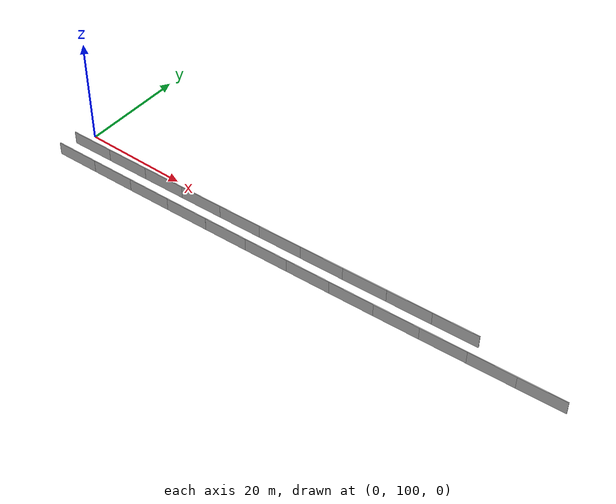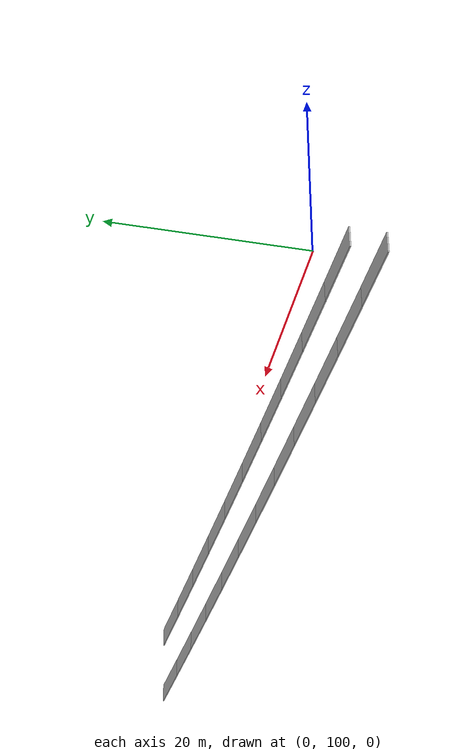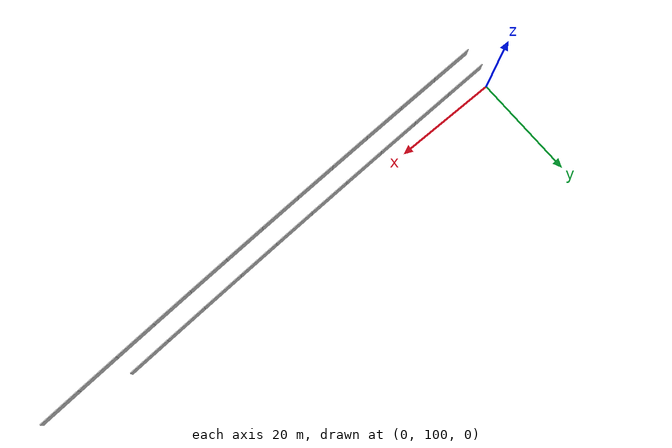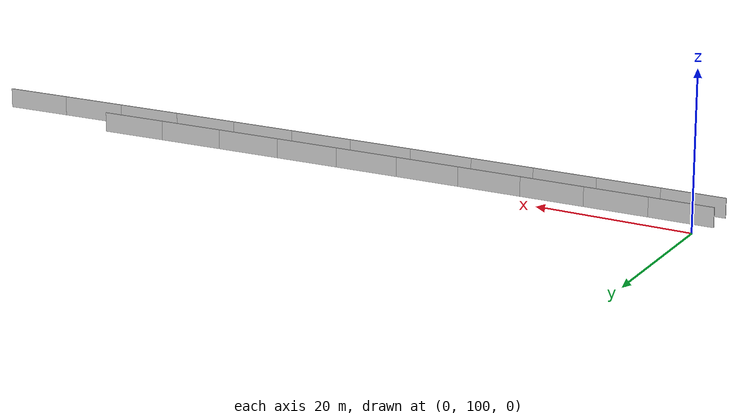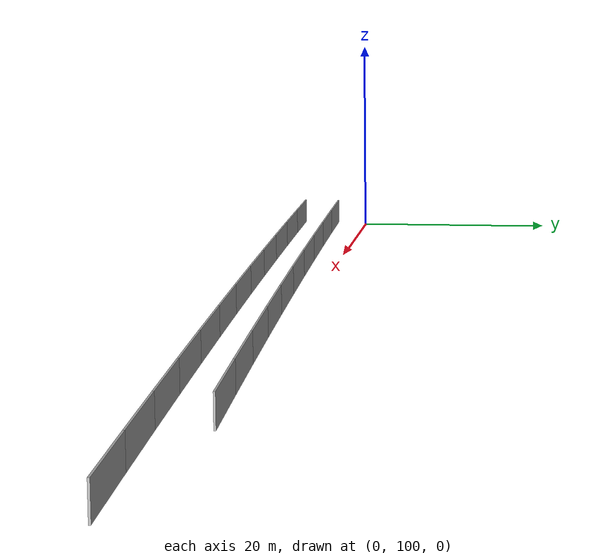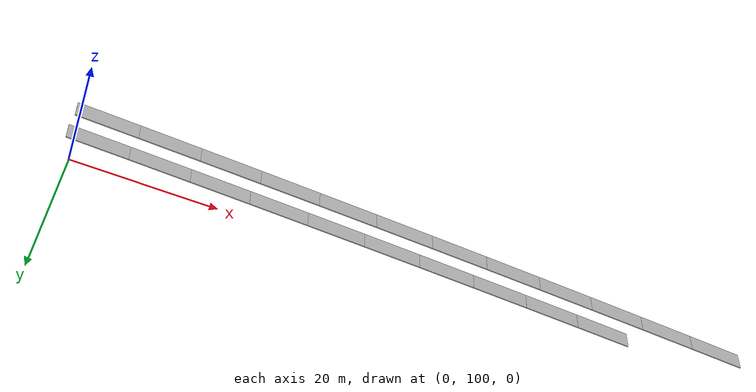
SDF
<?xml version="1.0" ?>
<sdf version="1.6">
  <model name="sps_2300">
    <pose frame="">0 0 0 0 -0 0</pose>
    <static>1</static>
    <self_collide>0</self_collide>
    <allow_auto_disable>0</allow_auto_disable>
    <link name="Wall8978">
      <kinematic>0</kinematic>
      <gravity>1</gravity>
      <self_collide>0</self_collide>
      <collision name="collision">
        <geometry>
          <box>
            <size>8.25191 0.15 2.5</size>
          </box>
        </geometry>
        <pose frame="">0 0 0 0 -0 0</pose>
      </collision>
      <visual name="visual">
        <geometry>
          <box>
            <size>8.25191 0.15 2.5</size>
          </box>
        </geometry>
        <pose frame="">0 0 0 0 -0 0</pose>
        <cast_shadows>1</cast_shadows>
        <transparency>0.0</transparency>
      </visual>
      <pose frame="">2.73046 96.8373 1.25 0 -0 0.0272964</pose>
    </link>
    <link name="Wall8979">
      <kinematic>0</kinematic>
      <gravity>1</gravity>
      <self_collide>0</self_collide>
      <collision name="collision">
        <geometry>
          <box>
            <size>8.2518 0.15 2.5</size>
          </box>
        </geometry>
        <pose frame="">0 0 0 0 -0 0</pose>
      </collision>
      <visual name="visual">
        <geometry>
          <box>
            <size>8.2518 0.15 2.5</size>
          </box>
        </geometry>
        <pose frame="">0 0 0 0 -0 0</pose>
        <cast_shadows>1</cast_shadows>
        <transparency>0.0</transparency>
      </visual>
      <pose frame="">10.979 97.0723 1.25 0 -0 0.0296721</pose>
    </link>
    <link name="Wall8980">
      <kinematic>0</kinematic>
      <gravity>1</gravity>
      <self_collide>0</self_collide>
      <collision name="collision">
        <geometry>
          <box>
            <size>8.25185 0.15 2.5</size>
          </box>
        </geometry>
        <pose frame="">0 0 0 0 -0 0</pose>
      </collision>
      <visual name="visual">
        <geometry>
          <box>
            <size>8.25185 0.15 2.5</size>
          </box>
        </geometry>
        <pose frame="">0 0 0 0 -0 0</pose>
        <cast_shadows>1</cast_shadows>
        <transparency>0.0</transparency>
      </visual>
      <pose frame="">19.2269 97.3268 1.25 0 -0 0.0320177</pose>
    </link>
    <link name="Wall8981">
      <kinematic>0</kinematic>
      <gravity>1</gravity>
      <self_collide>0</self_collide>
      <collision name="collision">
        <geometry>
          <box>
            <size>8.25189 0.15 2.5</size>
          </box>
        </geometry>
        <pose frame="">0 0 0 0 -0 0</pose>
      </collision>
      <visual name="visual">
        <geometry>
          <box>
            <size>8.25189 0.15 2.5</size>
          </box>
        </geometry>
        <pose frame="">0 0 0 0 -0 0</pose>
        <cast_shadows>1</cast_shadows>
        <transparency>0.0</transparency>
      </visual>
      <pose frame="">27.4742 97.6007 1.25 0 -0 0.0343784</pose>
    </link>
    <link name="Wall8982">
      <kinematic>0</kinematic>
      <gravity>1</gravity>
      <self_collide>0</self_collide>
      <collision name="collision">
        <geometry>
          <box>
            <size>8.25154 0.15 2.5</size>
          </box>
        </geometry>
        <pose frame="">0 0 0 0 -0 0</pose>
      </collision>
      <visual name="visual">
        <geometry>
          <box>
            <size>8.25154 0.15 2.5</size>
          </box>
        </geometry>
        <pose frame="">0 0 0 0 -0 0</pose>
        <cast_shadows>1</cast_shadows>
        <transparency>0.0</transparency>
      </visual>
      <pose frame="">35.7207 97.8941 1.25 0 -0 0.0367483</pose>
    </link>
    <link name="Wall8983">
      <kinematic>0</kinematic>
      <gravity>1</gravity>
      <self_collide>0</self_collide>
      <collision name="collision">
        <geometry>
          <box>
            <size>8.25191 0.15 2.5</size>
          </box>
        </geometry>
        <pose frame="">0 0 0 0 -0 0</pose>
      </collision>
      <visual name="visual">
        <geometry>
          <box>
            <size>8.25191 0.15 2.5</size>
          </box>
        </geometry>
        <pose frame="">0 0 0 0 -0 0</pose>
        <cast_shadows>1</cast_shadows>
        <transparency>0.0</transparency>
      </visual>
      <pose frame="">43.9665 98.207 1.25 0 -0 0.0391078</pose>
    </link>
    <link name="Wall8984">
      <kinematic>0</kinematic>
      <gravity>1</gravity>
      <self_collide>0</self_collide>
      <collision name="collision">
        <geometry>
          <box>
            <size>8.25148 0.15 2.5</size>
          </box>
        </geometry>
        <pose frame="">0 0 0 0 -0 0</pose>
      </collision>
      <visual name="visual">
        <geometry>
          <box>
            <size>8.25148 0.15 2.5</size>
          </box>
        </geometry>
        <pose frame="">0 0 0 0 -0 0</pose>
        <cast_shadows>1</cast_shadows>
        <transparency>0.0</transparency>
      </visual>
      <pose frame="">52.2114 98.5394 1.25 0 -0 0.0414788</pose>
    </link>
    <link name="Wall8985">
      <kinematic>0</kinematic>
      <gravity>1</gravity>
      <self_collide>0</self_collide>
      <collision name="collision">
        <geometry>
          <box>
            <size>8.25195 0.15 2.5</size>
          </box>
        </geometry>
        <pose frame="">0 0 0 0 -0 0</pose>
      </collision>
      <visual name="visual">
        <geometry>
          <box>
            <size>8.25195 0.15 2.5</size>
          </box>
        </geometry>
        <pose frame="">0 0 0 0 -0 0</pose>
        <cast_shadows>1</cast_shadows>
        <transparency>0.0</transparency>
      </visual>
      <pose frame="">60.4556 98.8913 1.25 0 -0 0.043838</pose>
    </link>
    <link name="Wall8986">
      <kinematic>0</kinematic>
      <gravity>1</gravity>
      <self_collide>0</self_collide>
      <collision name="collision">
        <geometry>
          <box>
            <size>8.25178 0.15 2.5</size>
          </box>
        </geometry>
        <pose frame="">0 0 0 0 -0 0</pose>
      </collision>
      <visual name="visual">
        <geometry>
          <box>
            <size>8.25178 0.15 2.5</size>
          </box>
        </geometry>
        <pose frame="">0 0 0 0 -0 0</pose>
        <cast_shadows>1</cast_shadows>
        <transparency>0.0</transparency>
      </visual>
      <pose frame="">68.6991 99.2626 1.25 0 -0 0.046186</pose>
    </link>
    <link name="Wall8987">
      <kinematic>0</kinematic>
      <gravity>1</gravity>
      <self_collide>0</self_collide>
      <collision name="collision">
        <geometry>
          <box>
            <size>8.25155 0.15 2.5</size>
          </box>
        </geometry>
        <pose frame="">0 0 0 0 -0 0</pose>
      </collision>
      <visual name="visual">
        <geometry>
          <box>
            <size>8.25155 0.15 2.5</size>
          </box>
        </geometry>
        <pose frame="">0 0 0 0 -0 0</pose>
        <cast_shadows>1</cast_shadows>
        <transparency>0.0</transparency>
      </visual>
      <pose frame="">76.9416 99.6534 1.25 0 -0 0.0485717</pose>
    </link>
    <link name="Wall9069">
      <kinematic>0</kinematic>
      <gravity>1</gravity>
      <self_collide>0</self_collide>
      <collision name="collision">
        <geometry>
          <box>
            <size>8.26168 0.15 2.5</size>
          </box>
        </geometry>
        <pose frame="">0 0 0 0 -0 0</pose>
      </collision>
      <visual name="visual">
        <geometry>
          <box>
            <size>8.26168 0.15 2.5</size>
          </box>
        </geometry>
        <pose frame="">0 0 0 0 -0 0</pose>
        <cast_shadows>1</cast_shadows>
        <transparency>0.0</transparency>
      </visual>
      <pose frame="">2.76495 93.0803 1.25 0 -0 0.0272642</pose>
    </link>
    <link name="Wall9070">
      <kinematic>0</kinematic>
      <gravity>1</gravity>
      <self_collide>0</self_collide>
      <collision name="collision">
        <geometry>
          <box>
            <size>8.26181 0.15 2.5</size>
          </box>
        </geometry>
        <pose frame="">0 0 0 0 -0 0</pose>
      </collision>
      <visual name="visual">
        <geometry>
          <box>
            <size>8.26181 0.15 2.5</size>
          </box>
        </geometry>
        <pose frame="">0 0 0 0 -0 0</pose>
        <cast_shadows>1</cast_shadows>
        <transparency>0.0</transparency>
      </visual>
      <pose frame="">11.0233 93.3154 1.25 0 -0 0.0296583</pose>
    </link>
    <link name="Wall9071">
      <kinematic>0</kinematic>
      <gravity>1</gravity>
      <self_collide>0</self_collide>
      <collision name="collision">
        <geometry>
          <box>
            <size>8.26168 0.15 2.5</size>
          </box>
        </geometry>
        <pose frame="">0 0 0 0 -0 0</pose>
      </collision>
      <visual name="visual">
        <geometry>
          <box>
            <size>8.26168 0.15 2.5</size>
          </box>
        </geometry>
        <pose frame="">0 0 0 0 -0 0</pose>
        <cast_shadows>1</cast_shadows>
        <transparency>0.0</transparency>
      </visual>
      <pose frame="">19.2812 93.5701 1.25 0 -0 0.0320092</pose>
    </link>
    <link name="Wall9072">
      <kinematic>0</kinematic>
      <gravity>1</gravity>
      <self_collide>0</self_collide>
      <collision name="collision">
        <geometry>
          <box>
            <size>8.26183 0.15 2.5</size>
          </box>
        </geometry>
        <pose frame="">0 0 0 0 -0 0</pose>
      </collision>
      <visual name="visual">
        <geometry>
          <box>
            <size>8.26183 0.15 2.5</size>
          </box>
        </geometry>
        <pose frame="">0 0 0 0 -0 0</pose>
        <cast_shadows>1</cast_shadows>
        <transparency>0.0</transparency>
      </visual>
      <pose frame="">27.5384 93.8442 1.25 0 -0 0.0343591</pose>
    </link>
    <link name="Wall9073">
      <kinematic>0</kinematic>
      <gravity>1</gravity>
      <self_collide>0</self_collide>
      <collision name="collision">
        <geometry>
          <box>
            <size>8.26161 0.15 2.5</size>
          </box>
        </geometry>
        <pose frame="">0 0 0 0 -0 0</pose>
      </collision>
      <visual name="visual">
        <geometry>
          <box>
            <size>8.26161 0.15 2.5</size>
          </box>
        </geometry>
        <pose frame="">0 0 0 0 -0 0</pose>
        <cast_shadows>1</cast_shadows>
        <transparency>0.0</transparency>
      </visual>
      <pose frame="">35.7949 94.1377 1.25 0 -0 0.0367109</pose>
    </link>
    <link name="Wall9074">
      <kinematic>0</kinematic>
      <gravity>1</gravity>
      <self_collide>0</self_collide>
      <collision name="collision">
        <geometry>
          <box>
            <size>8.26169 0.15 2.5</size>
          </box>
        </geometry>
        <pose frame="">0 0 0 0 -0 0</pose>
      </collision>
      <visual name="visual">
        <geometry>
          <box>
            <size>8.26169 0.15 2.5</size>
          </box>
        </geometry>
        <pose frame="">0 0 0 0 -0 0</pose>
        <cast_shadows>1</cast_shadows>
        <transparency>0.0</transparency>
      </visual>
      <pose frame="">44.0506 94.4508 1.25 0 -0 0.0391059</pose>
    </link>
    <link name="Wall9075">
      <kinematic>0</kinematic>
      <gravity>1</gravity>
      <self_collide>0</self_collide>
      <collision name="collision">
        <geometry>
          <box>
            <size>8.26149 0.15 2.5</size>
          </box>
        </geometry>
        <pose frame="">0 0 0 0 -0 0</pose>
      </collision>
      <visual name="visual">
        <geometry>
          <box>
            <size>8.26149 0.15 2.5</size>
          </box>
        </geometry>
        <pose frame="">0 0 0 0 -0 0</pose>
        <cast_shadows>1</cast_shadows>
        <transparency>0.0</transparency>
      </visual>
      <pose frame="">52.3054 94.7835 1.25 0 -0 0.0414507</pose>
    </link>
    <link name="Wall9076">
      <kinematic>0</kinematic>
      <gravity>1</gravity>
      <self_collide>0</self_collide>
      <collision name="collision">
        <geometry>
          <box>
            <size>8.26195 0.15 2.5</size>
          </box>
        </geometry>
        <pose frame="">0 0 0 0 -0 0</pose>
      </collision>
      <visual name="visual">
        <geometry>
          <box>
            <size>8.26195 0.15 2.5</size>
          </box>
        </geometry>
        <pose frame="">0 0 0 0 -0 0</pose>
        <cast_shadows>1</cast_shadows>
        <transparency>0.0</transparency>
      </visual>
      <pose frame="">60.5597 95.1356 1.25 0 -0 0.0438071</pose>
    </link>
    <link name="Wall9077">
      <kinematic>0</kinematic>
      <gravity>1</gravity>
      <self_collide>0</self_collide>
      <collision name="collision">
        <geometry>
          <box>
            <size>8.2618 0.15 2.5</size>
          </box>
        </geometry>
        <pose frame="">0 0 0 0 -0 0</pose>
      </collision>
      <visual name="visual">
        <geometry>
          <box>
            <size>8.2618 0.15 2.5</size>
          </box>
        </geometry>
        <pose frame="">0 0 0 0 -0 0</pose>
        <cast_shadows>1</cast_shadows>
        <transparency>0.0</transparency>
      </visual>
      <pose frame="">68.8132 95.5072 1.25 0 -0 0.0461817</pose>
    </link>
    <link name="Wall9078">
      <kinematic>0</kinematic>
      <gravity>1</gravity>
      <self_collide>0</self_collide>
      <collision name="collision">
        <geometry>
          <box>
            <size>8.26151 0.15 2.5</size>
          </box>
        </geometry>
        <pose frame="">0 0 0 0 -0 0</pose>
      </collision>
      <visual name="visual">
        <geometry>
          <box>
            <size>8.26151 0.15 2.5</size>
          </box>
        </geometry>
        <pose frame="">0 0 0 0 -0 0</pose>
        <cast_shadows>1</cast_shadows>
        <transparency>0.0</transparency>
      </visual>
      <pose frame="">77.0655 95.8984 1.25 0 -0 0.0485576</pose>
    </link>
    <link name="Wall9079">
      <kinematic>0</kinematic>
      <gravity>1</gravity>
      <self_collide>0</self_collide>
      <collision name="collision">
        <geometry>
          <box>
            <size>8.26174 0.15 2.5</size>
          </box>
        </geometry>
        <pose frame="">0 0 0 0 -0 0</pose>
      </collision>
      <visual name="visual">
        <geometry>
          <box>
            <size>8.26174 0.15 2.5</size>
          </box>
        </geometry>
        <pose frame="">0 0 0 0 -0 0</pose>
        <cast_shadows>1</cast_shadows>
        <transparency>0.0</transparency>
      </visual>
      <pose frame="">85.3169 96.3091 1.25 0 -0 0.0509084</pose>
    </link>
    <link name="Wall9080">
      <kinematic>0</kinematic>
      <gravity>1</gravity>
      <self_collide>0</self_collide>
      <collision name="collision">
        <geometry>
          <box>
            <size>8.26191 0.15 2.5</size>
          </box>
        </geometry>
        <pose frame="">0 0 0 0 -0 0</pose>
      </collision>
      <visual name="visual">
        <geometry>
          <box>
            <size>8.26191 0.15 2.5</size>
          </box>
        </geometry>
        <pose frame="">0 0 0 0 -0 0</pose>
        <cast_shadows>1</cast_shadows>
        <transparency>0.0</transparency>
      </visual>
      <pose frame="">93.5676 96.7393 1.25 0 -0 0.053282</pose>
    </link>
  </model>
</sdf>
